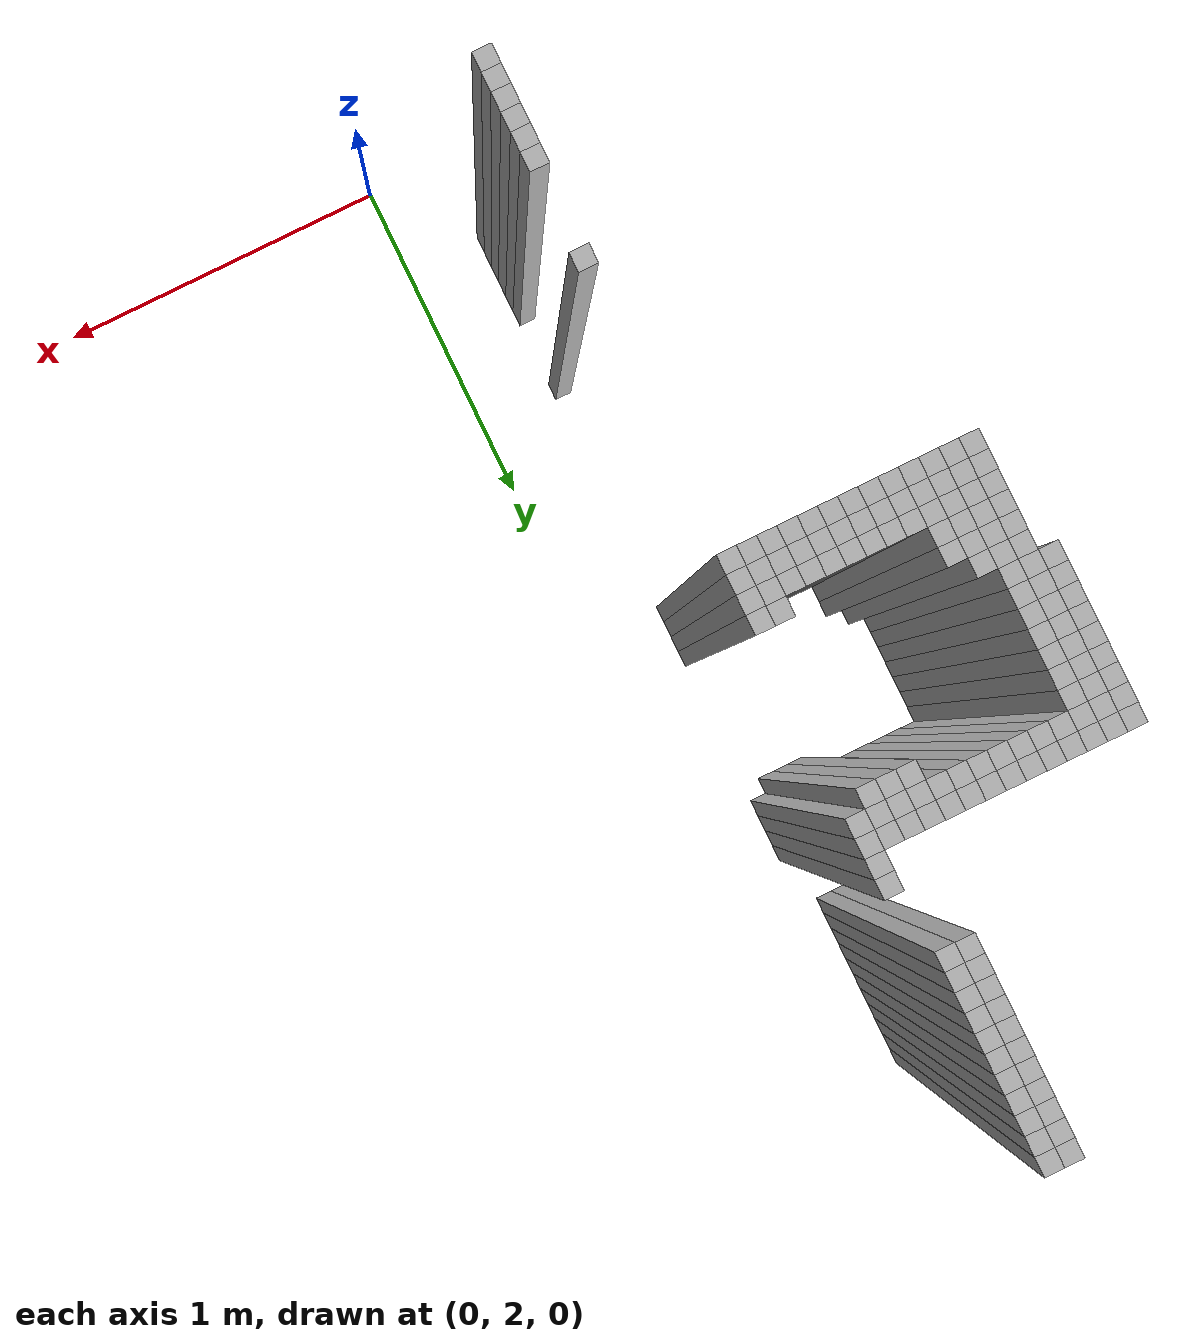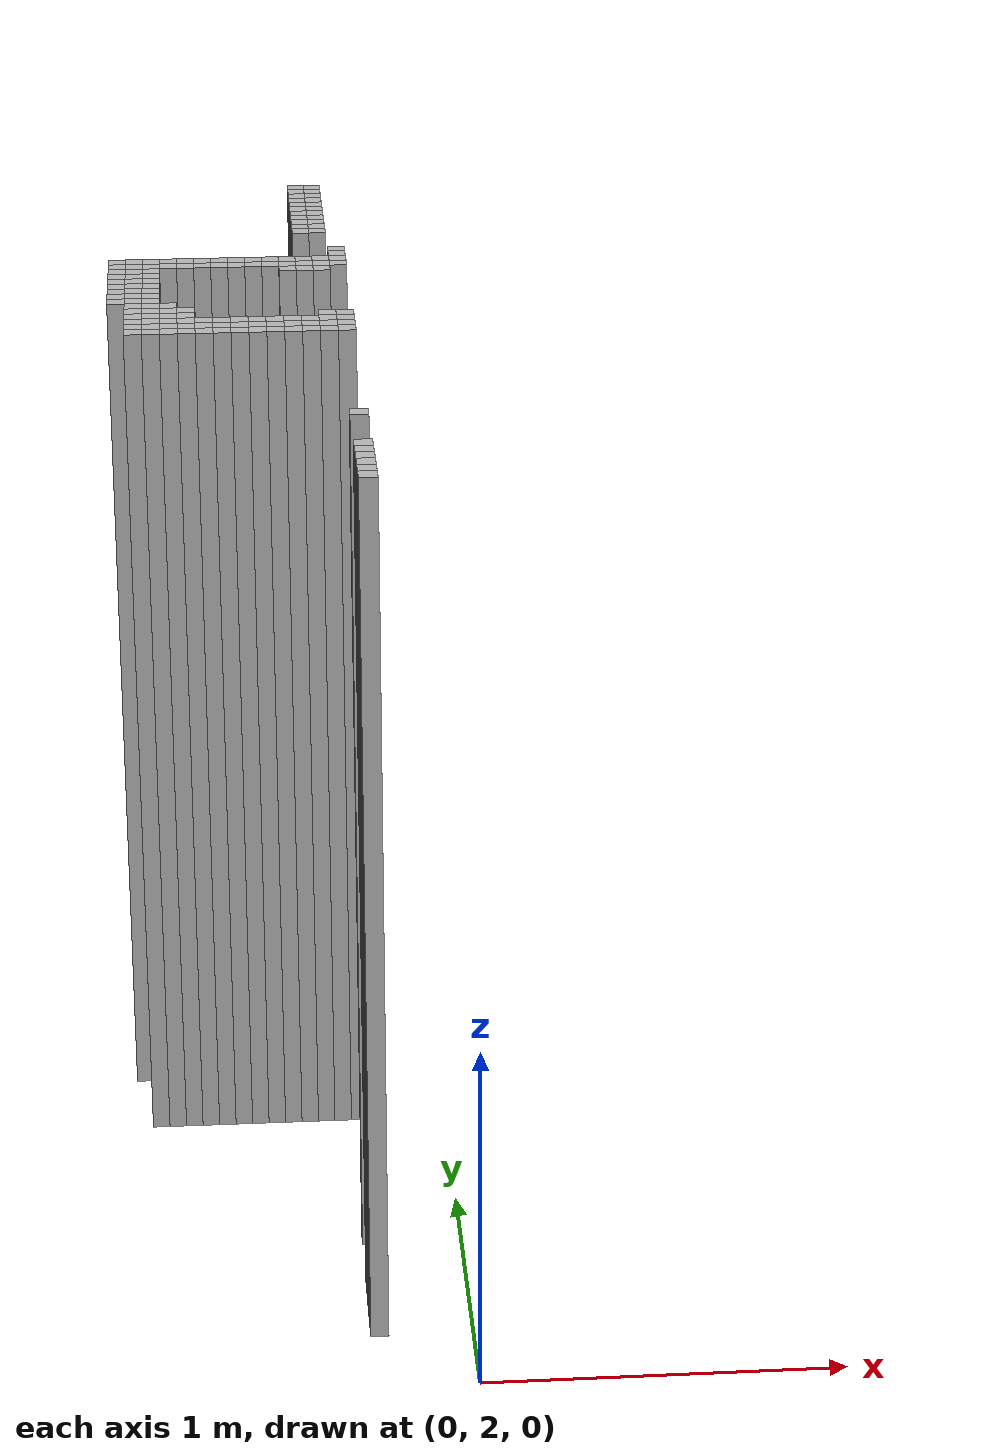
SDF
<sdf version="1.9">
 <world name="map_world">
  <model name="wall_216_53">
   <static>true</static>
   <pose>-0.361 5.030 1.250 0 0 0</pose>
   <link name="link">
    <collision name="collision"><geometry><box><size>0.050 0.050 2.500</size></box></geometry></collision>
    <visual name="visual"><geometry><box><size>0.050 0.050 2.500</size></box></geometry></visual>
   </link>
  </model>
  <model name="wall_217_53">
   <static>true</static>
   <pose>-0.311 5.030 1.250 0 0 0</pose>
   <link name="link">
    <collision name="collision"><geometry><box><size>0.050 0.050 2.500</size></box></geometry></collision>
    <visual name="visual"><geometry><box><size>0.050 0.050 2.500</size></box></geometry></visual>
   </link>
  </model>
  <model name="wall_216_54">
   <static>true</static>
   <pose>-0.361 4.980 1.250 0 0 0</pose>
   <link name="link">
    <collision name="collision"><geometry><box><size>0.050 0.050 2.500</size></box></geometry></collision>
    <visual name="visual"><geometry><box><size>0.050 0.050 2.500</size></box></geometry></visual>
   </link>
  </model>
  <model name="wall_217_54">
   <static>true</static>
   <pose>-0.311 4.980 1.250 0 0 0</pose>
   <link name="link">
    <collision name="collision"><geometry><box><size>0.050 0.050 2.500</size></box></geometry></collision>
    <visual name="visual"><geometry><box><size>0.050 0.050 2.500</size></box></geometry></visual>
   </link>
  </model>
  <model name="wall_216_55">
   <static>true</static>
   <pose>-0.361 4.930 1.250 0 0 0</pose>
   <link name="link">
    <collision name="collision"><geometry><box><size>0.050 0.050 2.500</size></box></geometry></collision>
    <visual name="visual"><geometry><box><size>0.050 0.050 2.500</size></box></geometry></visual>
   </link>
  </model>
  <model name="wall_217_55">
   <static>true</static>
   <pose>-0.311 4.930 1.250 0 0 0</pose>
   <link name="link">
    <collision name="collision"><geometry><box><size>0.050 0.050 2.500</size></box></geometry></collision>
    <visual name="visual"><geometry><box><size>0.050 0.050 2.500</size></box></geometry></visual>
   </link>
  </model>
  <model name="wall_216_56">
   <static>true</static>
   <pose>-0.361 4.880 1.250 0 0 0</pose>
   <link name="link">
    <collision name="collision"><geometry><box><size>0.050 0.050 2.500</size></box></geometry></collision>
    <visual name="visual"><geometry><box><size>0.050 0.050 2.500</size></box></geometry></visual>
   </link>
  </model>
  <model name="wall_217_56">
   <static>true</static>
   <pose>-0.311 4.880 1.250 0 0 0</pose>
   <link name="link">
    <collision name="collision"><geometry><box><size>0.050 0.050 2.500</size></box></geometry></collision>
    <visual name="visual"><geometry><box><size>0.050 0.050 2.500</size></box></geometry></visual>
   </link>
  </model>
  <model name="wall_216_57">
   <static>true</static>
   <pose>-0.361 4.830 1.250 0 0 0</pose>
   <link name="link">
    <collision name="collision"><geometry><box><size>0.050 0.050 2.500</size></box></geometry></collision>
    <visual name="visual"><geometry><box><size>0.050 0.050 2.500</size></box></geometry></visual>
   </link>
  </model>
  <model name="wall_217_57">
   <static>true</static>
   <pose>-0.311 4.830 1.250 0 0 0</pose>
   <link name="link">
    <collision name="collision"><geometry><box><size>0.050 0.050 2.500</size></box></geometry></collision>
    <visual name="visual"><geometry><box><size>0.050 0.050 2.500</size></box></geometry></visual>
   </link>
  </model>
  <model name="wall_216_58">
   <static>true</static>
   <pose>-0.361 4.780 1.250 0 0 0</pose>
   <link name="link">
    <collision name="collision"><geometry><box><size>0.050 0.050 2.500</size></box></geometry></collision>
    <visual name="visual"><geometry><box><size>0.050 0.050 2.500</size></box></geometry></visual>
   </link>
  </model>
  <model name="wall_217_58">
   <static>true</static>
   <pose>-0.311 4.780 1.250 0 0 0</pose>
   <link name="link">
    <collision name="collision"><geometry><box><size>0.050 0.050 2.500</size></box></geometry></collision>
    <visual name="visual"><geometry><box><size>0.050 0.050 2.500</size></box></geometry></visual>
   </link>
  </model>
  <model name="wall_216_59">
   <static>true</static>
   <pose>-0.361 4.730 1.250 0 0 0</pose>
   <link name="link">
    <collision name="collision"><geometry><box><size>0.050 0.050 2.500</size></box></geometry></collision>
    <visual name="visual"><geometry><box><size>0.050 0.050 2.500</size></box></geometry></visual>
   </link>
  </model>
  <model name="wall_217_59">
   <static>true</static>
   <pose>-0.311 4.730 1.250 0 0 0</pose>
   <link name="link">
    <collision name="collision"><geometry><box><size>0.050 0.050 2.500</size></box></geometry></collision>
    <visual name="visual"><geometry><box><size>0.050 0.050 2.500</size></box></geometry></visual>
   </link>
  </model>
  <model name="wall_216_60">
   <static>true</static>
   <pose>-0.361 4.680 1.250 0 0 0</pose>
   <link name="link">
    <collision name="collision"><geometry><box><size>0.050 0.050 2.500</size></box></geometry></collision>
    <visual name="visual"><geometry><box><size>0.050 0.050 2.500</size></box></geometry></visual>
   </link>
  </model>
  <model name="wall_217_60">
   <static>true</static>
   <pose>-0.311 4.680 1.250 0 0 0</pose>
   <link name="link">
    <collision name="collision"><geometry><box><size>0.050 0.050 2.500</size></box></geometry></collision>
    <visual name="visual"><geometry><box><size>0.050 0.050 2.500</size></box></geometry></visual>
   </link>
  </model>
  <model name="wall_216_61">
   <static>true</static>
   <pose>-0.361 4.630 1.250 0 0 0</pose>
   <link name="link">
    <collision name="collision"><geometry><box><size>0.050 0.050 2.500</size></box></geometry></collision>
    <visual name="visual"><geometry><box><size>0.050 0.050 2.500</size></box></geometry></visual>
   </link>
  </model>
  <model name="wall_217_61">
   <static>true</static>
   <pose>-0.311 4.630 1.250 0 0 0</pose>
   <link name="link">
    <collision name="collision"><geometry><box><size>0.050 0.050 2.500</size></box></geometry></collision>
    <visual name="visual"><geometry><box><size>0.050 0.050 2.500</size></box></geometry></visual>
   </link>
  </model>
  <model name="wall_216_62">
   <static>true</static>
   <pose>-0.361 4.580 1.250 0 0 0</pose>
   <link name="link">
    <collision name="collision"><geometry><box><size>0.050 0.050 2.500</size></box></geometry></collision>
    <visual name="visual"><geometry><box><size>0.050 0.050 2.500</size></box></geometry></visual>
   </link>
  </model>
  <model name="wall_217_62">
   <static>true</static>
   <pose>-0.311 4.580 1.250 0 0 0</pose>
   <link name="link">
    <collision name="collision"><geometry><box><size>0.050 0.050 2.500</size></box></geometry></collision>
    <visual name="visual"><geometry><box><size>0.050 0.050 2.500</size></box></geometry></visual>
   </link>
  </model>
  <model name="wall_216_63">
   <static>true</static>
   <pose>-0.361 4.530 1.250 0 0 0</pose>
   <link name="link">
    <collision name="collision"><geometry><box><size>0.050 0.050 2.500</size></box></geometry></collision>
    <visual name="visual"><geometry><box><size>0.050 0.050 2.500</size></box></geometry></visual>
   </link>
  </model>
  <model name="wall_217_63">
   <static>true</static>
   <pose>-0.311 4.530 1.250 0 0 0</pose>
   <link name="link">
    <collision name="collision"><geometry><box><size>0.050 0.050 2.500</size></box></geometry></collision>
    <visual name="visual"><geometry><box><size>0.050 0.050 2.500</size></box></geometry></visual>
   </link>
  </model>
  <model name="wall_218_67">
   <static>true</static>
   <pose>-0.261 4.330 1.250 0 0 0</pose>
   <link name="link">
    <collision name="collision"><geometry><box><size>0.050 0.050 2.500</size></box></geometry></collision>
    <visual name="visual"><geometry><box><size>0.050 0.050 2.500</size></box></geometry></visual>
   </link>
  </model>
  <model name="wall_218_68">
   <static>true</static>
   <pose>-0.261 4.280 1.250 0 0 0</pose>
   <link name="link">
    <collision name="collision"><geometry><box><size>0.050 0.050 2.500</size></box></geometry></collision>
    <visual name="visual"><geometry><box><size>0.050 0.050 2.500</size></box></geometry></visual>
   </link>
  </model>
  <model name="wall_205_69">
   <static>true</static>
   <pose>-0.911 4.230 1.250 0 0 0</pose>
   <link name="link">
    <collision name="collision"><geometry><box><size>0.050 0.050 2.500</size></box></geometry></collision>
    <visual name="visual"><geometry><box><size>0.050 0.050 2.500</size></box></geometry></visual>
   </link>
  </model>
  <model name="wall_206_69">
   <static>true</static>
   <pose>-0.861 4.230 1.250 0 0 0</pose>
   <link name="link">
    <collision name="collision"><geometry><box><size>0.050 0.050 2.500</size></box></geometry></collision>
    <visual name="visual"><geometry><box><size>0.050 0.050 2.500</size></box></geometry></visual>
   </link>
  </model>
  <model name="wall_207_69">
   <static>true</static>
   <pose>-0.811 4.230 1.250 0 0 0</pose>
   <link name="link">
    <collision name="collision"><geometry><box><size>0.050 0.050 2.500</size></box></geometry></collision>
    <visual name="visual"><geometry><box><size>0.050 0.050 2.500</size></box></geometry></visual>
   </link>
  </model>
  <model name="wall_208_69">
   <static>true</static>
   <pose>-0.761 4.230 1.250 0 0 0</pose>
   <link name="link">
    <collision name="collision"><geometry><box><size>0.050 0.050 2.500</size></box></geometry></collision>
    <visual name="visual"><geometry><box><size>0.050 0.050 2.500</size></box></geometry></visual>
   </link>
  </model>
  <model name="wall_209_69">
   <static>true</static>
   <pose>-0.711 4.230 1.250 0 0 0</pose>
   <link name="link">
    <collision name="collision"><geometry><box><size>0.050 0.050 2.500</size></box></geometry></collision>
    <visual name="visual"><geometry><box><size>0.050 0.050 2.500</size></box></geometry></visual>
   </link>
  </model>
  <model name="wall_210_69">
   <static>true</static>
   <pose>-0.661 4.230 1.250 0 0 0</pose>
   <link name="link">
    <collision name="collision"><geometry><box><size>0.050 0.050 2.500</size></box></geometry></collision>
    <visual name="visual"><geometry><box><size>0.050 0.050 2.500</size></box></geometry></visual>
   </link>
  </model>
  <model name="wall_211_69">
   <static>true</static>
   <pose>-0.611 4.230 1.250 0 0 0</pose>
   <link name="link">
    <collision name="collision"><geometry><box><size>0.050 0.050 2.500</size></box></geometry></collision>
    <visual name="visual"><geometry><box><size>0.050 0.050 2.500</size></box></geometry></visual>
   </link>
  </model>
  <model name="wall_212_69">
   <static>true</static>
   <pose>-0.561 4.230 1.250 0 0 0</pose>
   <link name="link">
    <collision name="collision"><geometry><box><size>0.050 0.050 2.500</size></box></geometry></collision>
    <visual name="visual"><geometry><box><size>0.050 0.050 2.500</size></box></geometry></visual>
   </link>
  </model>
  <model name="wall_213_69">
   <static>true</static>
   <pose>-0.511 4.230 1.250 0 0 0</pose>
   <link name="link">
    <collision name="collision"><geometry><box><size>0.050 0.050 2.500</size></box></geometry></collision>
    <visual name="visual"><geometry><box><size>0.050 0.050 2.500</size></box></geometry></visual>
   </link>
  </model>
  <model name="wall_214_69">
   <static>true</static>
   <pose>-0.461 4.230 1.250 0 0 0</pose>
   <link name="link">
    <collision name="collision"><geometry><box><size>0.050 0.050 2.500</size></box></geometry></collision>
    <visual name="visual"><geometry><box><size>0.050 0.050 2.500</size></box></geometry></visual>
   </link>
  </model>
  <model name="wall_215_69">
   <static>true</static>
   <pose>-0.411 4.230 1.250 0 0 0</pose>
   <link name="link">
    <collision name="collision"><geometry><box><size>0.050 0.050 2.500</size></box></geometry></collision>
    <visual name="visual"><geometry><box><size>0.050 0.050 2.500</size></box></geometry></visual>
   </link>
  </model>
  <model name="wall_216_69">
   <static>true</static>
   <pose>-0.361 4.230 1.250 0 0 0</pose>
   <link name="link">
    <collision name="collision"><geometry><box><size>0.050 0.050 2.500</size></box></geometry></collision>
    <visual name="visual"><geometry><box><size>0.050 0.050 2.500</size></box></geometry></visual>
   </link>
  </model>
  <model name="wall_217_69">
   <static>true</static>
   <pose>-0.311 4.230 1.250 0 0 0</pose>
   <link name="link">
    <collision name="collision"><geometry><box><size>0.050 0.050 2.500</size></box></geometry></collision>
    <visual name="visual"><geometry><box><size>0.050 0.050 2.500</size></box></geometry></visual>
   </link>
  </model>
  <model name="wall_218_69">
   <static>true</static>
   <pose>-0.261 4.230 1.250 0 0 0</pose>
   <link name="link">
    <collision name="collision"><geometry><box><size>0.050 0.050 2.500</size></box></geometry></collision>
    <visual name="visual"><geometry><box><size>0.050 0.050 2.500</size></box></geometry></visual>
   </link>
  </model>
  <model name="wall_205_70">
   <static>true</static>
   <pose>-0.911 4.180 1.250 0 0 0</pose>
   <link name="link">
    <collision name="collision"><geometry><box><size>0.050 0.050 2.500</size></box></geometry></collision>
    <visual name="visual"><geometry><box><size>0.050 0.050 2.500</size></box></geometry></visual>
   </link>
  </model>
  <model name="wall_206_70">
   <static>true</static>
   <pose>-0.861 4.180 1.250 0 0 0</pose>
   <link name="link">
    <collision name="collision"><geometry><box><size>0.050 0.050 2.500</size></box></geometry></collision>
    <visual name="visual"><geometry><box><size>0.050 0.050 2.500</size></box></geometry></visual>
   </link>
  </model>
  <model name="wall_207_70">
   <static>true</static>
   <pose>-0.811 4.180 1.250 0 0 0</pose>
   <link name="link">
    <collision name="collision"><geometry><box><size>0.050 0.050 2.500</size></box></geometry></collision>
    <visual name="visual"><geometry><box><size>0.050 0.050 2.500</size></box></geometry></visual>
   </link>
  </model>
  <model name="wall_208_70">
   <static>true</static>
   <pose>-0.761 4.180 1.250 0 0 0</pose>
   <link name="link">
    <collision name="collision"><geometry><box><size>0.050 0.050 2.500</size></box></geometry></collision>
    <visual name="visual"><geometry><box><size>0.050 0.050 2.500</size></box></geometry></visual>
   </link>
  </model>
  <model name="wall_209_70">
   <static>true</static>
   <pose>-0.711 4.180 1.250 0 0 0</pose>
   <link name="link">
    <collision name="collision"><geometry><box><size>0.050 0.050 2.500</size></box></geometry></collision>
    <visual name="visual"><geometry><box><size>0.050 0.050 2.500</size></box></geometry></visual>
   </link>
  </model>
  <model name="wall_210_70">
   <static>true</static>
   <pose>-0.661 4.180 1.250 0 0 0</pose>
   <link name="link">
    <collision name="collision"><geometry><box><size>0.050 0.050 2.500</size></box></geometry></collision>
    <visual name="visual"><geometry><box><size>0.050 0.050 2.500</size></box></geometry></visual>
   </link>
  </model>
  <model name="wall_211_70">
   <static>true</static>
   <pose>-0.611 4.180 1.250 0 0 0</pose>
   <link name="link">
    <collision name="collision"><geometry><box><size>0.050 0.050 2.500</size></box></geometry></collision>
    <visual name="visual"><geometry><box><size>0.050 0.050 2.500</size></box></geometry></visual>
   </link>
  </model>
  <model name="wall_212_70">
   <static>true</static>
   <pose>-0.561 4.180 1.250 0 0 0</pose>
   <link name="link">
    <collision name="collision"><geometry><box><size>0.050 0.050 2.500</size></box></geometry></collision>
    <visual name="visual"><geometry><box><size>0.050 0.050 2.500</size></box></geometry></visual>
   </link>
  </model>
  <model name="wall_213_70">
   <static>true</static>
   <pose>-0.511 4.180 1.250 0 0 0</pose>
   <link name="link">
    <collision name="collision"><geometry><box><size>0.050 0.050 2.500</size></box></geometry></collision>
    <visual name="visual"><geometry><box><size>0.050 0.050 2.500</size></box></geometry></visual>
   </link>
  </model>
  <model name="wall_214_70">
   <static>true</static>
   <pose>-0.461 4.180 1.250 0 0 0</pose>
   <link name="link">
    <collision name="collision"><geometry><box><size>0.050 0.050 2.500</size></box></geometry></collision>
    <visual name="visual"><geometry><box><size>0.050 0.050 2.500</size></box></geometry></visual>
   </link>
  </model>
  <model name="wall_215_70">
   <static>true</static>
   <pose>-0.411 4.180 1.250 0 0 0</pose>
   <link name="link">
    <collision name="collision"><geometry><box><size>0.050 0.050 2.500</size></box></geometry></collision>
    <visual name="visual"><geometry><box><size>0.050 0.050 2.500</size></box></geometry></visual>
   </link>
  </model>
  <model name="wall_216_70">
   <static>true</static>
   <pose>-0.361 4.180 1.250 0 0 0</pose>
   <link name="link">
    <collision name="collision"><geometry><box><size>0.050 0.050 2.500</size></box></geometry></collision>
    <visual name="visual"><geometry><box><size>0.050 0.050 2.500</size></box></geometry></visual>
   </link>
  </model>
  <model name="wall_217_70">
   <static>true</static>
   <pose>-0.311 4.180 1.250 0 0 0</pose>
   <link name="link">
    <collision name="collision"><geometry><box><size>0.050 0.050 2.500</size></box></geometry></collision>
    <visual name="visual"><geometry><box><size>0.050 0.050 2.500</size></box></geometry></visual>
   </link>
  </model>
  <model name="wall_218_70">
   <static>true</static>
   <pose>-0.261 4.180 1.250 0 0 0</pose>
   <link name="link">
    <collision name="collision"><geometry><box><size>0.050 0.050 2.500</size></box></geometry></collision>
    <visual name="visual"><geometry><box><size>0.050 0.050 2.500</size></box></geometry></visual>
   </link>
  </model>
  <model name="wall_205_71">
   <static>true</static>
   <pose>-0.911 4.130 1.250 0 0 0</pose>
   <link name="link">
    <collision name="collision"><geometry><box><size>0.050 0.050 2.500</size></box></geometry></collision>
    <visual name="visual"><geometry><box><size>0.050 0.050 2.500</size></box></geometry></visual>
   </link>
  </model>
  <model name="wall_206_71">
   <static>true</static>
   <pose>-0.861 4.130 1.250 0 0 0</pose>
   <link name="link">
    <collision name="collision"><geometry><box><size>0.050 0.050 2.500</size></box></geometry></collision>
    <visual name="visual"><geometry><box><size>0.050 0.050 2.500</size></box></geometry></visual>
   </link>
  </model>
  <model name="wall_207_71">
   <static>true</static>
   <pose>-0.811 4.130 1.250 0 0 0</pose>
   <link name="link">
    <collision name="collision"><geometry><box><size>0.050 0.050 2.500</size></box></geometry></collision>
    <visual name="visual"><geometry><box><size>0.050 0.050 2.500</size></box></geometry></visual>
   </link>
  </model>
  <model name="wall_215_71">
   <static>true</static>
   <pose>-0.411 4.130 1.250 0 0 0</pose>
   <link name="link">
    <collision name="collision"><geometry><box><size>0.050 0.050 2.500</size></box></geometry></collision>
    <visual name="visual"><geometry><box><size>0.050 0.050 2.500</size></box></geometry></visual>
   </link>
  </model>
  <model name="wall_216_71">
   <static>true</static>
   <pose>-0.361 4.130 1.250 0 0 0</pose>
   <link name="link">
    <collision name="collision"><geometry><box><size>0.050 0.050 2.500</size></box></geometry></collision>
    <visual name="visual"><geometry><box><size>0.050 0.050 2.500</size></box></geometry></visual>
   </link>
  </model>
  <model name="wall_217_71">
   <static>true</static>
   <pose>-0.311 4.130 1.250 0 0 0</pose>
   <link name="link">
    <collision name="collision"><geometry><box><size>0.050 0.050 2.500</size></box></geometry></collision>
    <visual name="visual"><geometry><box><size>0.050 0.050 2.500</size></box></geometry></visual>
   </link>
  </model>
  <model name="wall_205_72">
   <static>true</static>
   <pose>-0.911 4.080 1.250 0 0 0</pose>
   <link name="link">
    <collision name="collision"><geometry><box><size>0.050 0.050 2.500</size></box></geometry></collision>
    <visual name="visual"><geometry><box><size>0.050 0.050 2.500</size></box></geometry></visual>
   </link>
  </model>
  <model name="wall_206_72">
   <static>true</static>
   <pose>-0.861 4.080 1.250 0 0 0</pose>
   <link name="link">
    <collision name="collision"><geometry><box><size>0.050 0.050 2.500</size></box></geometry></collision>
    <visual name="visual"><geometry><box><size>0.050 0.050 2.500</size></box></geometry></visual>
   </link>
  </model>
  <model name="wall_207_72">
   <static>true</static>
   <pose>-0.811 4.080 1.250 0 0 0</pose>
   <link name="link">
    <collision name="collision"><geometry><box><size>0.050 0.050 2.500</size></box></geometry></collision>
    <visual name="visual"><geometry><box><size>0.050 0.050 2.500</size></box></geometry></visual>
   </link>
  </model>
  <model name="wall_205_73">
   <static>true</static>
   <pose>-0.911 4.030 1.250 0 0 0</pose>
   <link name="link">
    <collision name="collision"><geometry><box><size>0.050 0.050 2.500</size></box></geometry></collision>
    <visual name="visual"><geometry><box><size>0.050 0.050 2.500</size></box></geometry></visual>
   </link>
  </model>
  <model name="wall_206_73">
   <static>true</static>
   <pose>-0.861 4.030 1.250 0 0 0</pose>
   <link name="link">
    <collision name="collision"><geometry><box><size>0.050 0.050 2.500</size></box></geometry></collision>
    <visual name="visual"><geometry><box><size>0.050 0.050 2.500</size></box></geometry></visual>
   </link>
  </model>
  <model name="wall_207_73">
   <static>true</static>
   <pose>-0.811 4.030 1.250 0 0 0</pose>
   <link name="link">
    <collision name="collision"><geometry><box><size>0.050 0.050 2.500</size></box></geometry></collision>
    <visual name="visual"><geometry><box><size>0.050 0.050 2.500</size></box></geometry></visual>
   </link>
  </model>
  <model name="wall_205_74">
   <static>true</static>
   <pose>-0.911 3.980 1.250 0 0 0</pose>
   <link name="link">
    <collision name="collision"><geometry><box><size>0.050 0.050 2.500</size></box></geometry></collision>
    <visual name="visual"><geometry><box><size>0.050 0.050 2.500</size></box></geometry></visual>
   </link>
  </model>
  <model name="wall_206_74">
   <static>true</static>
   <pose>-0.861 3.980 1.250 0 0 0</pose>
   <link name="link">
    <collision name="collision"><geometry><box><size>0.050 0.050 2.500</size></box></geometry></collision>
    <visual name="visual"><geometry><box><size>0.050 0.050 2.500</size></box></geometry></visual>
   </link>
  </model>
  <model name="wall_207_74">
   <static>true</static>
   <pose>-0.811 3.980 1.250 0 0 0</pose>
   <link name="link">
    <collision name="collision"><geometry><box><size>0.050 0.050 2.500</size></box></geometry></collision>
    <visual name="visual"><geometry><box><size>0.050 0.050 2.500</size></box></geometry></visual>
   </link>
  </model>
  <model name="wall_205_75">
   <static>true</static>
   <pose>-0.911 3.930 1.250 0 0 0</pose>
   <link name="link">
    <collision name="collision"><geometry><box><size>0.050 0.050 2.500</size></box></geometry></collision>
    <visual name="visual"><geometry><box><size>0.050 0.050 2.500</size></box></geometry></visual>
   </link>
  </model>
  <model name="wall_206_75">
   <static>true</static>
   <pose>-0.861 3.930 1.250 0 0 0</pose>
   <link name="link">
    <collision name="collision"><geometry><box><size>0.050 0.050 2.500</size></box></geometry></collision>
    <visual name="visual"><geometry><box><size>0.050 0.050 2.500</size></box></geometry></visual>
   </link>
  </model>
  <model name="wall_207_75">
   <static>true</static>
   <pose>-0.811 3.930 1.250 0 0 0</pose>
   <link name="link">
    <collision name="collision"><geometry><box><size>0.050 0.050 2.500</size></box></geometry></collision>
    <visual name="visual"><geometry><box><size>0.050 0.050 2.500</size></box></geometry></visual>
   </link>
  </model>
  <model name="wall_205_76">
   <static>true</static>
   <pose>-0.911 3.880 1.250 0 0 0</pose>
   <link name="link">
    <collision name="collision"><geometry><box><size>0.050 0.050 2.500</size></box></geometry></collision>
    <visual name="visual"><geometry><box><size>0.050 0.050 2.500</size></box></geometry></visual>
   </link>
  </model>
  <model name="wall_206_76">
   <static>true</static>
   <pose>-0.861 3.880 1.250 0 0 0</pose>
   <link name="link">
    <collision name="collision"><geometry><box><size>0.050 0.050 2.500</size></box></geometry></collision>
    <visual name="visual"><geometry><box><size>0.050 0.050 2.500</size></box></geometry></visual>
   </link>
  </model>
  <model name="wall_207_76">
   <static>true</static>
   <pose>-0.811 3.880 1.250 0 0 0</pose>
   <link name="link">
    <collision name="collision"><geometry><box><size>0.050 0.050 2.500</size></box></geometry></collision>
    <visual name="visual"><geometry><box><size>0.050 0.050 2.500</size></box></geometry></visual>
   </link>
  </model>
  <model name="wall_205_77">
   <static>true</static>
   <pose>-0.911 3.830 1.250 0 0 0</pose>
   <link name="link">
    <collision name="collision"><geometry><box><size>0.050 0.050 2.500</size></box></geometry></collision>
    <visual name="visual"><geometry><box><size>0.050 0.050 2.500</size></box></geometry></visual>
   </link>
  </model>
  <model name="wall_206_77">
   <static>true</static>
   <pose>-0.861 3.830 1.250 0 0 0</pose>
   <link name="link">
    <collision name="collision"><geometry><box><size>0.050 0.050 2.500</size></box></geometry></collision>
    <visual name="visual"><geometry><box><size>0.050 0.050 2.500</size></box></geometry></visual>
   </link>
  </model>
  <model name="wall_207_77">
   <static>true</static>
   <pose>-0.811 3.830 1.250 0 0 0</pose>
   <link name="link">
    <collision name="collision"><geometry><box><size>0.050 0.050 2.500</size></box></geometry></collision>
    <visual name="visual"><geometry><box><size>0.050 0.050 2.500</size></box></geometry></visual>
   </link>
  </model>
  <model name="wall_206_78">
   <static>true</static>
   <pose>-0.861 3.780 1.250 0 0 0</pose>
   <link name="link">
    <collision name="collision"><geometry><box><size>0.050 0.050 2.500</size></box></geometry></collision>
    <visual name="visual"><geometry><box><size>0.050 0.050 2.500</size></box></geometry></visual>
   </link>
  </model>
  <model name="wall_207_78">
   <static>true</static>
   <pose>-0.811 3.780 1.250 0 0 0</pose>
   <link name="link">
    <collision name="collision"><geometry><box><size>0.050 0.050 2.500</size></box></geometry></collision>
    <visual name="visual"><geometry><box><size>0.050 0.050 2.500</size></box></geometry></visual>
   </link>
  </model>
  <model name="wall_208_78">
   <static>true</static>
   <pose>-0.761 3.780 1.250 0 0 0</pose>
   <link name="link">
    <collision name="collision"><geometry><box><size>0.050 0.050 2.500</size></box></geometry></collision>
    <visual name="visual"><geometry><box><size>0.050 0.050 2.500</size></box></geometry></visual>
   </link>
  </model>
  <model name="wall_206_79">
   <static>true</static>
   <pose>-0.861 3.730 1.250 0 0 0</pose>
   <link name="link">
    <collision name="collision"><geometry><box><size>0.050 0.050 2.500</size></box></geometry></collision>
    <visual name="visual"><geometry><box><size>0.050 0.050 2.500</size></box></geometry></visual>
   </link>
  </model>
  <model name="wall_207_79">
   <static>true</static>
   <pose>-0.811 3.730 1.250 0 0 0</pose>
   <link name="link">
    <collision name="collision"><geometry><box><size>0.050 0.050 2.500</size></box></geometry></collision>
    <visual name="visual"><geometry><box><size>0.050 0.050 2.500</size></box></geometry></visual>
   </link>
  </model>
  <model name="wall_208_79">
   <static>true</static>
   <pose>-0.761 3.730 1.250 0 0 0</pose>
   <link name="link">
    <collision name="collision"><geometry><box><size>0.050 0.050 2.500</size></box></geometry></collision>
    <visual name="visual"><geometry><box><size>0.050 0.050 2.500</size></box></geometry></visual>
   </link>
  </model>
  <model name="wall_209_79">
   <static>true</static>
   <pose>-0.711 3.730 1.250 0 0 0</pose>
   <link name="link">
    <collision name="collision"><geometry><box><size>0.050 0.050 2.500</size></box></geometry></collision>
    <visual name="visual"><geometry><box><size>0.050 0.050 2.500</size></box></geometry></visual>
   </link>
  </model>
  <model name="wall_206_80">
   <static>true</static>
   <pose>-0.861 3.680 1.250 0 0 0</pose>
   <link name="link">
    <collision name="collision"><geometry><box><size>0.050 0.050 2.500</size></box></geometry></collision>
    <visual name="visual"><geometry><box><size>0.050 0.050 2.500</size></box></geometry></visual>
   </link>
  </model>
  <model name="wall_207_80">
   <static>true</static>
   <pose>-0.811 3.680 1.250 0 0 0</pose>
   <link name="link">
    <collision name="collision"><geometry><box><size>0.050 0.050 2.500</size></box></geometry></collision>
    <visual name="visual"><geometry><box><size>0.050 0.050 2.500</size></box></geometry></visual>
   </link>
  </model>
  <model name="wall_208_80">
   <static>true</static>
   <pose>-0.761 3.680 1.250 0 0 0</pose>
   <link name="link">
    <collision name="collision"><geometry><box><size>0.050 0.050 2.500</size></box></geometry></collision>
    <visual name="visual"><geometry><box><size>0.050 0.050 2.500</size></box></geometry></visual>
   </link>
  </model>
  <model name="wall_209_80">
   <static>true</static>
   <pose>-0.711 3.680 1.250 0 0 0</pose>
   <link name="link">
    <collision name="collision"><geometry><box><size>0.050 0.050 2.500</size></box></geometry></collision>
    <visual name="visual"><geometry><box><size>0.050 0.050 2.500</size></box></geometry></visual>
   </link>
  </model>
  <model name="wall_217_80">
   <static>true</static>
   <pose>-0.311 3.680 1.250 0 0 0</pose>
   <link name="link">
    <collision name="collision"><geometry><box><size>0.050 0.050 2.500</size></box></geometry></collision>
    <visual name="visual"><geometry><box><size>0.050 0.050 2.500</size></box></geometry></visual>
   </link>
  </model>
  <model name="wall_218_80">
   <static>true</static>
   <pose>-0.261 3.680 1.250 0 0 0</pose>
   <link name="link">
    <collision name="collision"><geometry><box><size>0.050 0.050 2.500</size></box></geometry></collision>
    <visual name="visual"><geometry><box><size>0.050 0.050 2.500</size></box></geometry></visual>
   </link>
  </model>
  <model name="wall_206_81">
   <static>true</static>
   <pose>-0.861 3.630 1.250 0 0 0</pose>
   <link name="link">
    <collision name="collision"><geometry><box><size>0.050 0.050 2.500</size></box></geometry></collision>
    <visual name="visual"><geometry><box><size>0.050 0.050 2.500</size></box></geometry></visual>
   </link>
  </model>
  <model name="wall_207_81">
   <static>true</static>
   <pose>-0.811 3.630 1.250 0 0 0</pose>
   <link name="link">
    <collision name="collision"><geometry><box><size>0.050 0.050 2.500</size></box></geometry></collision>
    <visual name="visual"><geometry><box><size>0.050 0.050 2.500</size></box></geometry></visual>
   </link>
  </model>
  <model name="wall_208_81">
   <static>true</static>
   <pose>-0.761 3.630 1.250 0 0 0</pose>
   <link name="link">
    <collision name="collision"><geometry><box><size>0.050 0.050 2.500</size></box></geometry></collision>
    <visual name="visual"><geometry><box><size>0.050 0.050 2.500</size></box></geometry></visual>
   </link>
  </model>
  <model name="wall_209_81">
   <static>true</static>
   <pose>-0.711 3.630 1.250 0 0 0</pose>
   <link name="link">
    <collision name="collision"><geometry><box><size>0.050 0.050 2.500</size></box></geometry></collision>
    <visual name="visual"><geometry><box><size>0.050 0.050 2.500</size></box></geometry></visual>
   </link>
  </model>
  <model name="wall_210_81">
   <static>true</static>
   <pose>-0.661 3.630 1.250 0 0 0</pose>
   <link name="link">
    <collision name="collision"><geometry><box><size>0.050 0.050 2.500</size></box></geometry></collision>
    <visual name="visual"><geometry><box><size>0.050 0.050 2.500</size></box></geometry></visual>
   </link>
  </model>
  <model name="wall_211_81">
   <static>true</static>
   <pose>-0.611 3.630 1.250 0 0 0</pose>
   <link name="link">
    <collision name="collision"><geometry><box><size>0.050 0.050 2.500</size></box></geometry></collision>
    <visual name="visual"><geometry><box><size>0.050 0.050 2.500</size></box></geometry></visual>
   </link>
  </model>
  <model name="wall_212_81">
   <static>true</static>
   <pose>-0.561 3.630 1.250 0 0 0</pose>
   <link name="link">
    <collision name="collision"><geometry><box><size>0.050 0.050 2.500</size></box></geometry></collision>
    <visual name="visual"><geometry><box><size>0.050 0.050 2.500</size></box></geometry></visual>
   </link>
  </model>
  <model name="wall_213_81">
   <static>true</static>
   <pose>-0.511 3.630 1.250 0 0 0</pose>
   <link name="link">
    <collision name="collision"><geometry><box><size>0.050 0.050 2.500</size></box></geometry></collision>
    <visual name="visual"><geometry><box><size>0.050 0.050 2.500</size></box></geometry></visual>
   </link>
  </model>
  <model name="wall_214_81">
   <static>true</static>
   <pose>-0.461 3.630 1.250 0 0 0</pose>
   <link name="link">
    <collision name="collision"><geometry><box><size>0.050 0.050 2.500</size></box></geometry></collision>
    <visual name="visual"><geometry><box><size>0.050 0.050 2.500</size></box></geometry></visual>
   </link>
  </model>
  <model name="wall_215_81">
   <static>true</static>
   <pose>-0.411 3.630 1.250 0 0 0</pose>
   <link name="link">
    <collision name="collision"><geometry><box><size>0.050 0.050 2.500</size></box></geometry></collision>
    <visual name="visual"><geometry><box><size>0.050 0.050 2.500</size></box></geometry></visual>
   </link>
  </model>
  <model name="wall_216_81">
   <static>true</static>
   <pose>-0.361 3.630 1.250 0 0 0</pose>
   <link name="link">
    <collision name="collision"><geometry><box><size>0.050 0.050 2.500</size></box></geometry></collision>
    <visual name="visual"><geometry><box><size>0.050 0.050 2.500</size></box></geometry></visual>
   </link>
  </model>
  <model name="wall_217_81">
   <static>true</static>
   <pose>-0.311 3.630 1.250 0 0 0</pose>
   <link name="link">
    <collision name="collision"><geometry><box><size>0.050 0.050 2.500</size></box></geometry></collision>
    <visual name="visual"><geometry><box><size>0.050 0.050 2.500</size></box></geometry></visual>
   </link>
  </model>
  <model name="wall_218_81">
   <static>true</static>
   <pose>-0.261 3.630 1.250 0 0 0</pose>
   <link name="link">
    <collision name="collision"><geometry><box><size>0.050 0.050 2.500</size></box></geometry></collision>
    <visual name="visual"><geometry><box><size>0.050 0.050 2.500</size></box></geometry></visual>
   </link>
  </model>
  <model name="wall_206_82">
   <static>true</static>
   <pose>-0.861 3.580 1.250 0 0 0</pose>
   <link name="link">
    <collision name="collision"><geometry><box><size>0.050 0.050 2.500</size></box></geometry></collision>
    <visual name="visual"><geometry><box><size>0.050 0.050 2.500</size></box></geometry></visual>
   </link>
  </model>
  <model name="wall_207_82">
   <static>true</static>
   <pose>-0.811 3.580 1.250 0 0 0</pose>
   <link name="link">
    <collision name="collision"><geometry><box><size>0.050 0.050 2.500</size></box></geometry></collision>
    <visual name="visual"><geometry><box><size>0.050 0.050 2.500</size></box></geometry></visual>
   </link>
  </model>
  <model name="wall_208_82">
   <static>true</static>
   <pose>-0.761 3.580 1.250 0 0 0</pose>
   <link name="link">
    <collision name="collision"><geometry><box><size>0.050 0.050 2.500</size></box></geometry></collision>
    <visual name="visual"><geometry><box><size>0.050 0.050 2.500</size></box></geometry></visual>
   </link>
  </model>
  <model name="wall_209_82">
   <static>true</static>
   <pose>-0.711 3.580 1.250 0 0 0</pose>
   <link name="link">
    <collision name="collision"><geometry><box><size>0.050 0.050 2.500</size></box></geometry></collision>
    <visual name="visual"><geometry><box><size>0.050 0.050 2.500</size></box></geometry></visual>
   </link>
  </model>
  <model name="wall_210_82">
   <static>true</static>
   <pose>-0.661 3.580 1.250 0 0 0</pose>
   <link name="link">
    <collision name="collision"><geometry><box><size>0.050 0.050 2.500</size></box></geometry></collision>
    <visual name="visual"><geometry><box><size>0.050 0.050 2.500</size></box></geometry></visual>
   </link>
  </model>
  <model name="wall_211_82">
   <static>true</static>
   <pose>-0.611 3.580 1.250 0 0 0</pose>
   <link name="link">
    <collision name="collision"><geometry><box><size>0.050 0.050 2.500</size></box></geometry></collision>
    <visual name="visual"><geometry><box><size>0.050 0.050 2.500</size></box></geometry></visual>
   </link>
  </model>
  <model name="wall_212_82">
   <static>true</static>
   <pose>-0.561 3.580 1.250 0 0 0</pose>
   <link name="link">
    <collision name="collision"><geometry><box><size>0.050 0.050 2.500</size></box></geometry></collision>
    <visual name="visual"><geometry><box><size>0.050 0.050 2.500</size></box></geometry></visual>
   </link>
  </model>
  <model name="wall_213_82">
   <static>true</static>
   <pose>-0.511 3.580 1.250 0 0 0</pose>
   <link name="link">
    <collision name="collision"><geometry><box><size>0.050 0.050 2.500</size></box></geometry></collision>
    <visual name="visual"><geometry><box><size>0.050 0.050 2.500</size></box></geometry></visual>
   </link>
  </model>
  <model name="wall_214_82">
   <static>true</static>
   <pose>-0.461 3.580 1.250 0 0 0</pose>
   <link name="link">
    <collision name="collision"><geometry><box><size>0.050 0.050 2.500</size></box></geometry></collision>
    <visual name="visual"><geometry><box><size>0.050 0.050 2.500</size></box></geometry></visual>
   </link>
  </model>
  <model name="wall_215_82">
   <static>true</static>
   <pose>-0.411 3.580 1.250 0 0 0</pose>
   <link name="link">
    <collision name="collision"><geometry><box><size>0.050 0.050 2.500</size></box></geometry></collision>
    <visual name="visual"><geometry><box><size>0.050 0.050 2.500</size></box></geometry></visual>
   </link>
  </model>
  <model name="wall_216_82">
   <static>true</static>
   <pose>-0.361 3.580 1.250 0 0 0</pose>
   <link name="link">
    <collision name="collision"><geometry><box><size>0.050 0.050 2.500</size></box></geometry></collision>
    <visual name="visual"><geometry><box><size>0.050 0.050 2.500</size></box></geometry></visual>
   </link>
  </model>
  <model name="wall_217_82">
   <static>true</static>
   <pose>-0.311 3.580 1.250 0 0 0</pose>
   <link name="link">
    <collision name="collision"><geometry><box><size>0.050 0.050 2.500</size></box></geometry></collision>
    <visual name="visual"><geometry><box><size>0.050 0.050 2.500</size></box></geometry></visual>
   </link>
  </model>
  <model name="wall_218_82">
   <static>true</static>
   <pose>-0.261 3.580 1.250 0 0 0</pose>
   <link name="link">
    <collision name="collision"><geometry><box><size>0.050 0.050 2.500</size></box></geometry></collision>
    <visual name="visual"><geometry><box><size>0.050 0.050 2.500</size></box></geometry></visual>
   </link>
  </model>
  <model name="wall_206_83">
   <static>true</static>
   <pose>-0.861 3.530 1.250 0 0 0</pose>
   <link name="link">
    <collision name="collision"><geometry><box><size>0.050 0.050 2.500</size></box></geometry></collision>
    <visual name="visual"><geometry><box><size>0.050 0.050 2.500</size></box></geometry></visual>
   </link>
  </model>
  <model name="wall_207_83">
   <static>true</static>
   <pose>-0.811 3.530 1.250 0 0 0</pose>
   <link name="link">
    <collision name="collision"><geometry><box><size>0.050 0.050 2.500</size></box></geometry></collision>
    <visual name="visual"><geometry><box><size>0.050 0.050 2.500</size></box></geometry></visual>
   </link>
  </model>
  <model name="wall_208_83">
   <static>true</static>
   <pose>-0.761 3.530 1.250 0 0 0</pose>
   <link name="link">
    <collision name="collision"><geometry><box><size>0.050 0.050 2.500</size></box></geometry></collision>
    <visual name="visual"><geometry><box><size>0.050 0.050 2.500</size></box></geometry></visual>
   </link>
  </model>
  <model name="wall_209_83">
   <static>true</static>
   <pose>-0.711 3.530 1.250 0 0 0</pose>
   <link name="link">
    <collision name="collision"><geometry><box><size>0.050 0.050 2.500</size></box></geometry></collision>
    <visual name="visual"><geometry><box><size>0.050 0.050 2.500</size></box></geometry></visual>
   </link>
  </model>
  <model name="wall_210_83">
   <static>true</static>
   <pose>-0.661 3.530 1.250 0 0 0</pose>
   <link name="link">
    <collision name="collision"><geometry><box><size>0.050 0.050 2.500</size></box></geometry></collision>
    <visual name="visual"><geometry><box><size>0.050 0.050 2.500</size></box></geometry></visual>
   </link>
  </model>
  <model name="wall_211_83">
   <static>true</static>
   <pose>-0.611 3.530 1.250 0 0 0</pose>
   <link name="link">
    <collision name="collision"><geometry><box><size>0.050 0.050 2.500</size></box></geometry></collision>
    <visual name="visual"><geometry><box><size>0.050 0.050 2.500</size></box></geometry></visual>
   </link>
  </model>
  <model name="wall_212_83">
   <static>true</static>
   <pose>-0.561 3.530 1.250 0 0 0</pose>
   <link name="link">
    <collision name="collision"><geometry><box><size>0.050 0.050 2.500</size></box></geometry></collision>
    <visual name="visual"><geometry><box><size>0.050 0.050 2.500</size></box></geometry></visual>
   </link>
  </model>
  <model name="wall_213_83">
   <static>true</static>
   <pose>-0.511 3.530 1.250 0 0 0</pose>
   <link name="link">
    <collision name="collision"><geometry><box><size>0.050 0.050 2.500</size></box></geometry></collision>
    <visual name="visual"><geometry><box><size>0.050 0.050 2.500</size></box></geometry></visual>
   </link>
  </model>
  <model name="wall_214_83">
   <static>true</static>
   <pose>-0.461 3.530 1.250 0 0 0</pose>
   <link name="link">
    <collision name="collision"><geometry><box><size>0.050 0.050 2.500</size></box></geometry></collision>
    <visual name="visual"><geometry><box><size>0.050 0.050 2.500</size></box></geometry></visual>
   </link>
  </model>
  <model name="wall_215_83">
   <static>true</static>
   <pose>-0.411 3.530 1.250 0 0 0</pose>
   <link name="link">
    <collision name="collision"><geometry><box><size>0.050 0.050 2.500</size></box></geometry></collision>
    <visual name="visual"><geometry><box><size>0.050 0.050 2.500</size></box></geometry></visual>
   </link>
  </model>
  <model name="wall_216_83">
   <static>true</static>
   <pose>-0.361 3.530 1.250 0 0 0</pose>
   <link name="link">
    <collision name="collision"><geometry><box><size>0.050 0.050 2.500</size></box></geometry></collision>
    <visual name="visual"><geometry><box><size>0.050 0.050 2.500</size></box></geometry></visual>
   </link>
  </model>
  <model name="wall_217_83">
   <static>true</static>
   <pose>-0.311 3.530 1.250 0 0 0</pose>
   <link name="link">
    <collision name="collision"><geometry><box><size>0.050 0.050 2.500</size></box></geometry></collision>
    <visual name="visual"><geometry><box><size>0.050 0.050 2.500</size></box></geometry></visual>
   </link>
  </model>
  <model name="wall_218_83">
   <static>true</static>
   <pose>-0.261 3.530 1.250 0 0 0</pose>
   <link name="link">
    <collision name="collision"><geometry><box><size>0.050 0.050 2.500</size></box></geometry></collision>
    <visual name="visual"><geometry><box><size>0.050 0.050 2.500</size></box></geometry></visual>
   </link>
  </model>
  <model name="wall_218_98">
   <static>true</static>
   <pose>-0.261 2.780 1.250 0 0 0</pose>
   <link name="link">
    <collision name="collision"><geometry><box><size>0.050 0.050 2.500</size></box></geometry></collision>
    <visual name="visual"><geometry><box><size>0.050 0.050 2.500</size></box></geometry></visual>
   </link>
  </model>
  <model name="wall_218_103">
   <static>true</static>
   <pose>-0.261 2.530 1.250 0 0 0</pose>
   <link name="link">
    <collision name="collision"><geometry><box><size>0.050 0.050 2.500</size></box></geometry></collision>
    <visual name="visual"><geometry><box><size>0.050 0.050 2.500</size></box></geometry></visual>
   </link>
  </model>
  <model name="wall_218_104">
   <static>true</static>
   <pose>-0.261 2.480 1.250 0 0 0</pose>
   <link name="link">
    <collision name="collision"><geometry><box><size>0.050 0.050 2.500</size></box></geometry></collision>
    <visual name="visual"><geometry><box><size>0.050 0.050 2.500</size></box></geometry></visual>
   </link>
  </model>
  <model name="wall_218_105">
   <static>true</static>
   <pose>-0.261 2.430 1.250 0 0 0</pose>
   <link name="link">
    <collision name="collision"><geometry><box><size>0.050 0.050 2.500</size></box></geometry></collision>
    <visual name="visual"><geometry><box><size>0.050 0.050 2.500</size></box></geometry></visual>
   </link>
  </model>
  <model name="wall_218_106">
   <static>true</static>
   <pose>-0.261 2.380 1.250 0 0 0</pose>
   <link name="link">
    <collision name="collision"><geometry><box><size>0.050 0.050 2.500</size></box></geometry></collision>
    <visual name="visual"><geometry><box><size>0.050 0.050 2.500</size></box></geometry></visual>
   </link>
  </model>
  <model name="wall_218_107">
   <static>true</static>
   <pose>-0.261 2.330 1.250 0 0 0</pose>
   <link name="link">
    <collision name="collision"><geometry><box><size>0.050 0.050 2.500</size></box></geometry></collision>
    <visual name="visual"><geometry><box><size>0.050 0.050 2.500</size></box></geometry></visual>
   </link>
  </model>
  <model name="wall_218_108">
   <static>true</static>
   <pose>-0.261 2.280 1.250 0 0 0</pose>
   <link name="link">
    <collision name="collision"><geometry><box><size>0.050 0.050 2.500</size></box></geometry></collision>
    <visual name="visual"><geometry><box><size>0.050 0.050 2.500</size></box></geometry></visual>
   </link>
  </model>
 </world>
</sdf>
